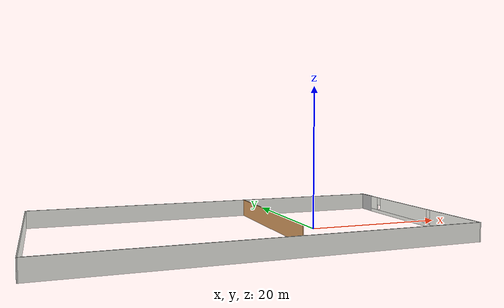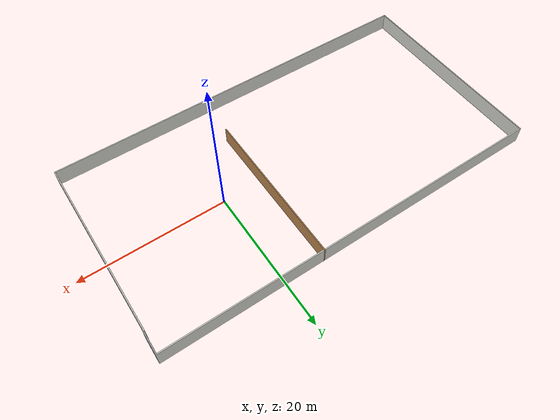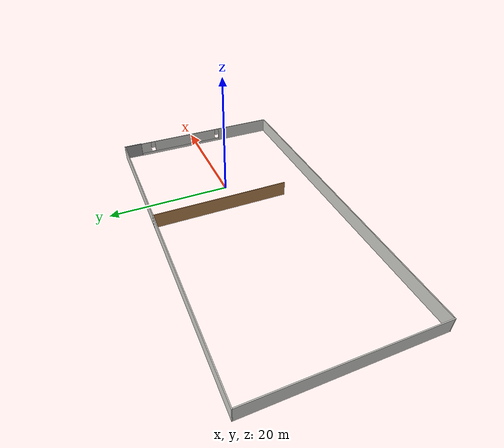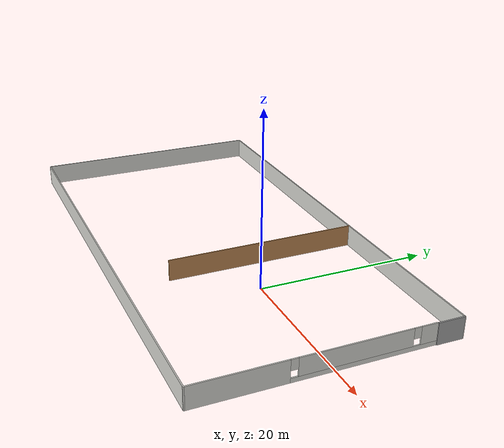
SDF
<?xml version='1.0'?>
<sdf version='1.7'>
  <model name='Cargo_Office'>
    <pose>-11.0033 -0.302054 0 0 -0 0</pose>
    <link name='Door_3'>
      <collision name='Door_3_Collision'>
        <geometry>
          <box>
            <size>3 0.17 2.5</size>
          </box>
        </geometry>
        <pose>0 0 1.25 0 -0 0</pose>
      </collision>
      <visual name='Door_3_Visual'>
        <pose>0 0 1.25 0 -0 0</pose>
        <geometry>
          <box>
            <size>3 0.17 2.5</size>
          </box>
        </geometry>
        <material>
          <script>
            <uri>file://media/materials/scripts/gazebo.material</uri>
            <name>Gazebo/Grey</name>
          </script>
        </material>
      </visual>
      <pose>27.2204 12.753 0 0 -0 1.56176</pose>
    </link>
    <link name='Wall_11'>
      <collision name='Wall_11_Collision'>
        <geometry>
          <box>
            <size>54.532 0.15 2.5</size>
          </box>
        </geometry>
        <pose>0 0 1.25 0 -0 0</pose>
      </collision>
      <visual name='Wall_11_Visual'>
        <pose>0 0 1.25 0 -0 0</pose>
        <geometry>
          <box>
            <size>54.532 0.15 2.5</size>
          </box>
        </geometry>
        <material>
          <script>
            <uri>file://media/materials/scripts/gazebo.material</uri>
            <name>Gazebo/CeilingTiled</name>
          </script>
          <ambient>1 1 1 1</ambient>
        </material>
        <meta>
          <layer>0</layer>
        </meta>
      </visual>
      <pose>0.046342 14.2618 0 0 -0 3.14159</pose>
    </link>
    <link name='Wall_13'>
      <pose>27.1288 -1.54795 0 0 -0 1.57099</pose>
      <visual name='Wall_13_Visual_0'>
        <pose>-7.76022 0 1.25 0 -0 0</pose>
        <geometry>
          <box>
            <size>10.0796 0.15 2.5</size>
          </box>
        </geometry>
        <material>
          <script>
            <uri>file://media/materials/scripts/gazebo.material</uri>
            <name>Gazebo/CeilingTiled</name>
          </script>
          <ambient>1 1 1 1</ambient>
        </material>
        <meta>
          <layer>0</layer>
        </meta>
      </visual>
      <collision name='Wall_13_Collision_0'>
        <geometry>
          <box>
            <size>10.0796 0.15 2.5</size>
          </box>
        </geometry>
        <pose>-7.76022 0 1.25 0 -0 0</pose>
      </collision>
      <visual name='Wall_13_Visual_1'>
        <pose>5.03978 0 0.25 0 -0 0</pose>
        <geometry>
          <box>
            <size>15.5204 0.15 0.5</size>
          </box>
        </geometry>
        <material>
          <script>
            <uri>file://media/materials/scripts/gazebo.material</uri>
            <name>Gazebo/CeilingTiled</name>
          </script>
          <ambient>1 1 1 1</ambient>
        </material>
        <meta>
          <layer>0</layer>
        </meta>
      </visual>
      <collision name='Wall_13_Collision_1'>
        <geometry>
          <box>
            <size>15.5204 0.15 0.5</size>
          </box>
        </geometry>
        <pose>5.03978 0 0.25 0 -0 0</pose>
      </collision>
      <visual name='Wall_13_Visual_2'>
        <pose>4.12313 0 1.5 0 -0 0</pose>
        <geometry>
          <box>
            <size>12.0871 0.15 2</size>
          </box>
        </geometry>
        <material>
          <script>
            <uri>file://media/materials/scripts/gazebo.material</uri>
            <name>Gazebo/CeilingTiled</name>
          </script>
          <ambient>1 1 1 1</ambient>
        </material>
        <meta>
          <layer>0</layer>
        </meta>
      </visual>
      <collision name='Wall_13_Collision_2'>
        <geometry>
          <box>
            <size>12.0871 0.15 2</size>
          </box>
        </geometry>
        <pose>4.12313 0 1.5 0 -0 0</pose>
      </collision>
      <visual name='Wall_13_Visual_3'>
        <pose>11.8833 0 1.5 0 -0 0</pose>
        <geometry>
          <box>
            <size>1.83331 0.15 2</size>
          </box>
        </geometry>
        <material>
          <script>
            <uri>file://media/materials/scripts/gazebo.material</uri>
            <name>Gazebo/CeilingTiled</name>
          </script>
          <ambient>1 1 1 1</ambient>
        </material>
        <meta>
          <layer>0</layer>
        </meta>
      </visual>
      <collision name='Wall_13_Collision_3'>
        <geometry>
          <box>
            <size>1.83331 0.15 2</size>
          </box>
        </geometry>
        <pose>11.8833 0 1.5 0 -0 0</pose>
      </collision>
      <visual name='Wall_13_Visual_4'>
        <pose>-2.32043 0 1.9 0 -0 0</pose>
        <geometry>
          <box>
            <size>0.8 0.15 1.2</size>
          </box>
        </geometry>
        <material>
          <script>
            <uri>file://media/materials/scripts/gazebo.material</uri>
            <name>Gazebo/CeilingTiled</name>
          </script>
          <ambient>1 1 1 1</ambient>
        </material>
        <meta>
          <layer>0</layer>
        </meta>
      </visual>
      <collision name='Wall_13_Collision_4'>
        <geometry>
          <box>
            <size>0.8 0.15 1.2</size>
          </box>
        </geometry>
        <pose>-2.32043 0 1.9 0 -0 0</pose>
      </collision>
      <visual name='Wall_13_Visual_5'>
        <pose>10.5667 0 1.9 0 -0 0</pose>
        <geometry>
          <box>
            <size>0.8 0.15 1.2</size>
          </box>
        </geometry>
        <material>
          <script>
            <uri>file://media/materials/scripts/gazebo.material</uri>
            <name>Gazebo/CeilingTiled</name>
          </script>
          <ambient>1 1 1 1</ambient>
        </material>
        <meta>
          <layer>0</layer>
        </meta>
      </visual>
      <collision name='Wall_13_Collision_5'>
        <geometry>
          <box>
            <size>0.8 0.15 1.2</size>
          </box>
        </geometry>
        <pose>10.5667 0 1.9 0 -0 0</pose>
      </collision>
    </link>
    <link name='Wall_16'>
      <collision name='Wall_16_Collision'>
        <geometry>
          <box>
            <size>22.5 0.15 2.5</size>
          </box>
        </geometry>
        <pose>0 0 1.25 0 -0 0</pose>
      </collision>
      <visual name='Wall_16_Visual'>
        <pose>0 0 1.25 0 -0 0</pose>
        <geometry>
          <box>
            <size>22.5 0.15 2.5</size>
          </box>
        </geometry>
        <material>
          <script>
            <uri>file://media/materials/scripts/gazebo.material</uri>
            <name>Gazebo/Wood</name>
          </script>
          <ambient>1 1 1 1</ambient>
        </material>
        <meta>
          <layer>0</layer>
        </meta>
      </visual>
      <pose>5.48134 3.09797 0 0 -0 -1.5708</pose>
    </link>
    <link name='Wall_8'>
      <collision name='Wall_8_Collision'>
        <geometry>
          <box>
            <size>28.6445 0.15 2.5</size>
          </box>
        </geometry>
        <pose>0 0 1.25 0 -0 0</pose>
      </collision>
      <visual name='Wall_8_Visual'>
        <pose>0 0 1.25 0 -0 0</pose>
        <geometry>
          <box>
            <size>28.6445 0.15 2.5</size>
          </box>
        </geometry>
        <material>
          <script>
            <uri>file://media/materials/scripts/gazebo.material</uri>
            <name>Gazebo/CeilingTiled</name>
          </script>
          <ambient>1 1 1 1</ambient>
        </material>
        <meta>
          <layer>0</layer>
        </meta>
      </visual>
      <pose>-27.1909 -0.025567 0 0 -0 -1.57404</pose>
    </link>
    <link name='Wall_9'>
      <collision name='Wall_9_Collision'>
        <geometry>
          <box>
            <size>54.5184 0.15 2.5</size>
          </box>
        </geometry>
        <pose>0 0 1.25 0 -0 0</pose>
      </collision>
      <visual name='Wall_9_Visual'>
        <pose>0 0 1.25 0 -0 0</pose>
        <geometry>
          <box>
            <size>54.5184 0.15 2.5</size>
          </box>
        </geometry>
        <material>
          <script>
            <uri>file://media/materials/scripts/gazebo.material</uri>
            <name>Gazebo/CeilingTiled</name>
          </script>
          <ambient>1 1 1 1</ambient>
        </material>
        <meta>
          <layer>0</layer>
        </meta>
      </visual>
      <pose>-0.05288 -14.2728 0 0 -0 -4e-06</pose>
    </link>
    <static>1</static>
  </model>
</sdf>
